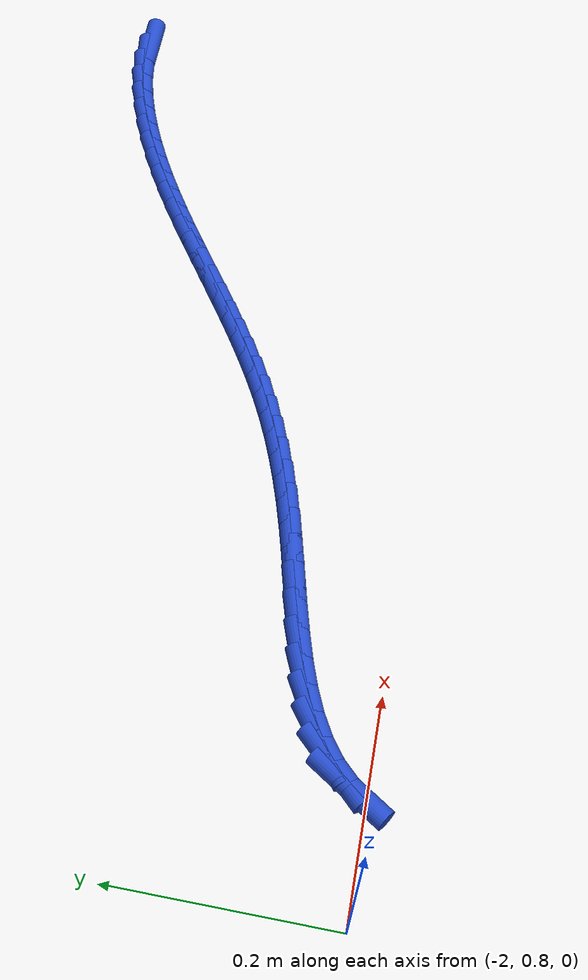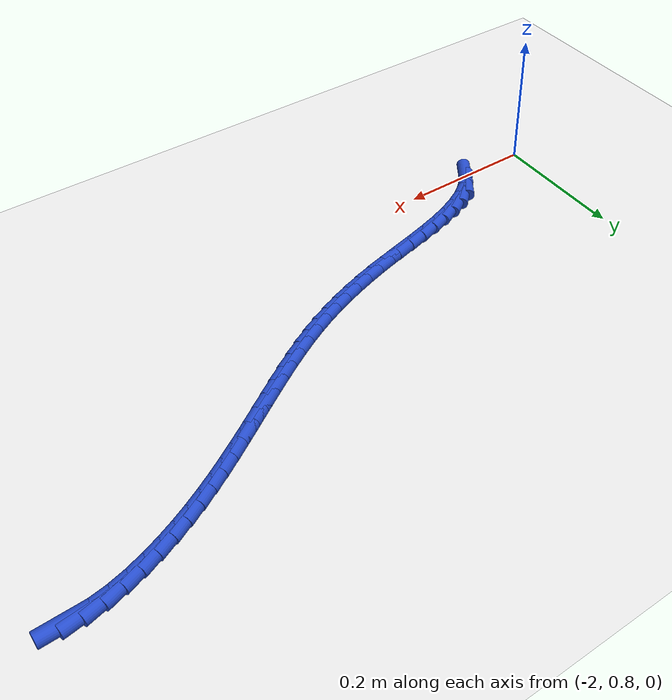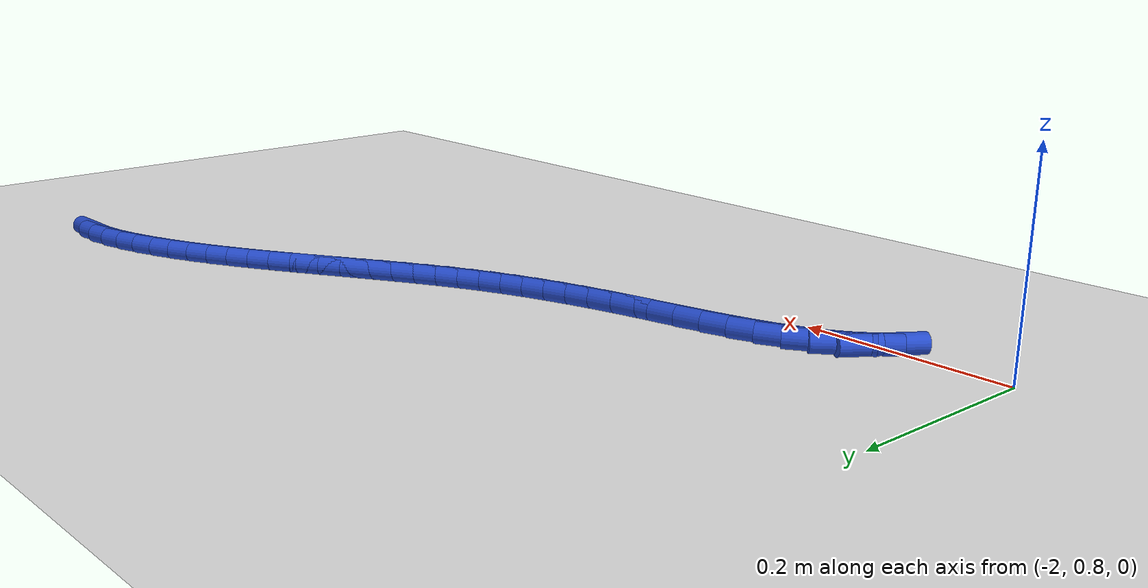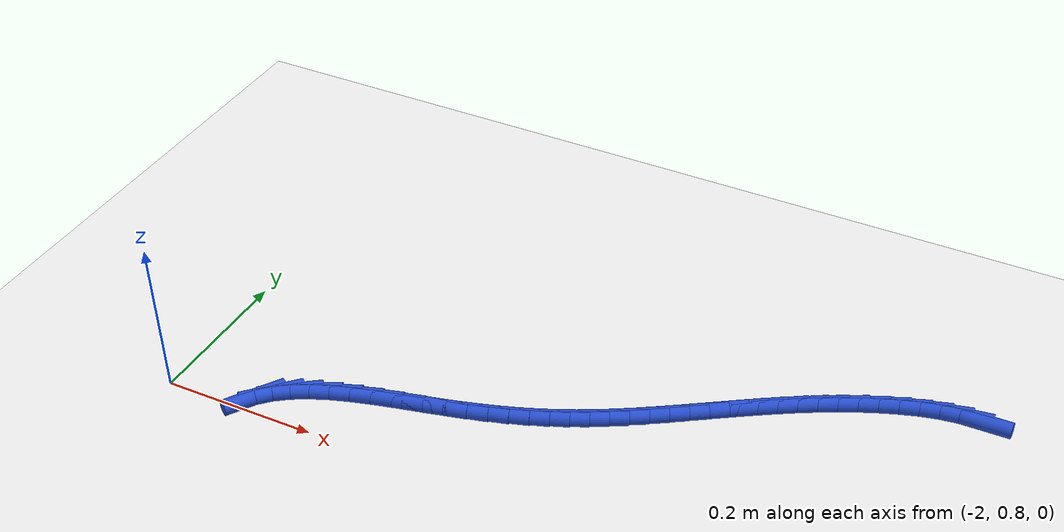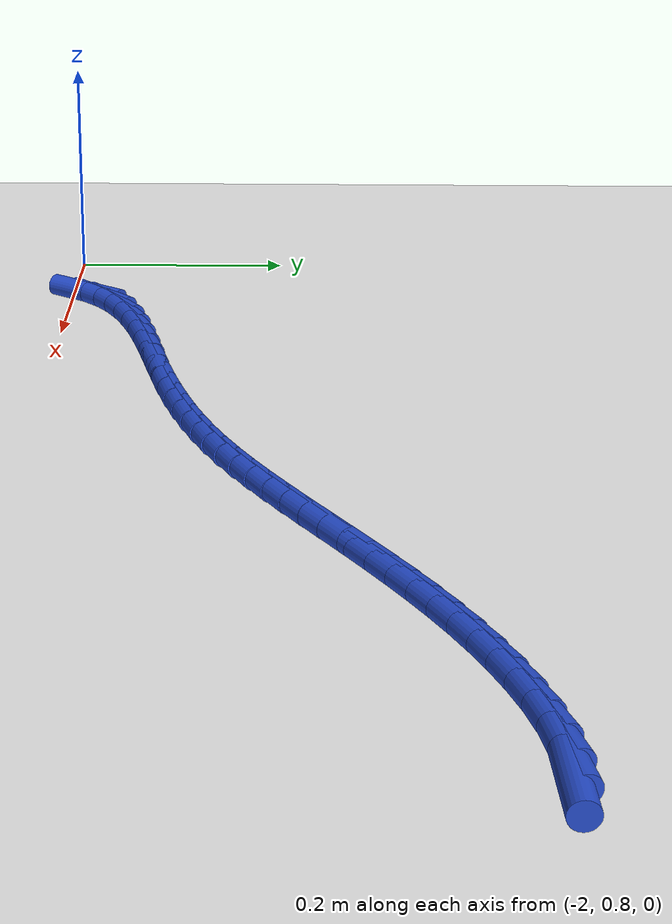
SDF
<sdf version="1.6">
 <world name="default">
  <model name="ground_plane">
   <static>1</static>
   <link name="link">
    <collision name="collision">
     <geometry><plane><normal>0 0 1</normal><size>100 100</size></plane></geometry>
     <surface><friction><ode><mu>100</mu><mu2>50</mu2></ode></friction></surface>
    </collision>
    <visual name="visual">
     <cast_shadows>0</cast_shadows>
     <geometry><plane><normal>0 0 1</normal><size>100 100</size></plane></geometry>
     <material>
      <script><uri>file://media/materials/scripts/gazebo.material</uri><name>Gazebo/WhiteGlow</name></script>
     </material>
    </visual>
   </link>
  </model>
  <model name="line">
   <link name="link_72">
    <pose>-1.095319518348811 1.162499602696919 0.01 0 1.57 0.01829741381164803</pose>
    <collision name="collision">
     <geometry><cylinder><radius>0.01</radius><length>0.08</length></cylinder></geometry>
    </collision>
    <visual name="visual">
     <material>
      <script><name>Gazebo/Blue</name><uri>file://media/materials/scripts/gazebo.material</uri></script>
     </material>
     <geometry><cylinder><radius>0.01</radius><length>0.08</length></cylinder></geometry>
    </visual>
   </link>
   <link name="link_73">
    <pose>-1.1185687767045964 1.1620741539154846 0.01 0 1.57 0.14616884977913375</pose>
    <collision name="collision">
     <geometry><cylinder><radius>0.01</radius><length>0.08</length></cylinder></geometry>
    </collision>
    <visual name="visual">
     <material>
      <script><name>Gazebo/Blue</name><uri>file://media/materials/scripts/gazebo.material</uri></script>
     </material>
     <geometry><cylinder><radius>0.01</radius><length>0.08</length></cylinder></geometry>
    </visual>
   </link>
   <link name="link_74">
    <pose>-1.142263840178189 1.1585857949677996 0.01 0 1.57 0.24255863920379583</pose>
    <collision name="collision">
     <geometry><cylinder><radius>0.01</radius><length>0.08</length></cylinder></geometry>
    </collision>
    <visual name="visual">
     <material>
      <script><name>Gazebo/Blue</name><uri>file://media/materials/scripts/gazebo.material</uri></script>
     </material>
     <geometry><cylinder><radius>0.01</radius><length>0.08</length></cylinder></geometry>
    </visual>
   </link>
   <link name="link_75">
    <pose>-1.1660514224911565 1.1527000269520096 0.01 0 1.57 0.31302887787069433</pose>
    <collision name="collision">
     <geometry><cylinder><radius>0.01</radius><length>0.08</length></cylinder></geometry>
    </collision>
    <visual name="visual">
     <material>
      <script><name>Gazebo/Blue</name><uri>file://media/materials/scripts/gazebo.material</uri></script>
     </material>
     <geometry><cylinder><radius>0.01</radius><length>0.08</length></cylinder></geometry>
    </visual>
   </link>
   <link name="link_76">
    <pose>-1.1895769446468005 1.1450855111065605 0.01 0 1.57 0.3650162050414237</pose>
    <collision name="collision">
     <geometry><cylinder><radius>0.01</radius><length>0.08</length></cylinder></geometry>
    </collision>
    <visual name="visual">
     <material>
      <script><name>Gazebo/Blue</name><uri>file://media/materials/scripts/gazebo.material</uri></script>
     </material>
     <geometry><cylinder><radius>0.01</radius><length>0.08</length></cylinder></geometry>
    </visual>
   </link>
   <link name="link_77">
    <pose>-1.212569343120712 1.1362991814722798 0.01 0 1.57 0.41009348464583384</pose>
    <collision name="collision">
     <geometry><cylinder><radius>0.01</radius><length>0.08</length></cylinder></geometry>
    </collision>
    <visual name="visual">
     <material>
      <script><name>Gazebo/Blue</name><uri>file://media/materials/scripts/gazebo.material</uri></script>
     </material>
     <geometry><cylinder><radius>0.01</radius><length>0.08</length></cylinder></geometry>
    </visual>
   </link>
   <link name="link_78">
    <pose>-1.2350287941676457 1.1265351068677885 0.01 0 1.57 0.45010851367796106</pose>
    <collision name="collision">
     <geometry><cylinder><radius>0.01</radius><length>0.08</length></cylinder></geometry>
    </collision>
    <visual name="visual">
     <material>
      <script><name>Gazebo/Blue</name><uri>file://media/materials/scripts/gazebo.material</uri></script>
     </material>
     <geometry><cylinder><radius>0.01</radius><length>0.08</length></cylinder></geometry>
    </visual>
   </link>
   <link name="link_79">
    <pose>-1.2570104436058611 1.1159138176988062 0.01 0 1.57 0.48488228012746865</pose>
    <collision name="collision">
     <geometry><cylinder><radius>0.01</radius><length>0.08</length></cylinder></geometry>
    </collision>
    <visual name="visual">
     <material>
      <script><name>Gazebo/Blue</name><uri>file://media/materials/scripts/gazebo.material</uri></script>
     </material>
     <geometry><cylinder><radius>0.01</radius><length>0.08</length></cylinder></geometry>
    </visual>
   </link>
   <link name="link_80">
    <pose>-1.2785694372536187 1.1045558443710521 0.01 0 1.57 0.5143201217191318</pose>
    <collision name="collision">
     <geometry><cylinder><radius>0.01</radius><length>0.08</length></cylinder></geometry>
    </collision>
    <visual name="visual">
     <material>
      <script><name>Gazebo/Blue</name><uri>file://media/materials/scripts/gazebo.material</uri></script>
     </material>
     <geometry><cylinder><radius>0.01</radius><length>0.08</length></cylinder></geometry>
    </visual>
   </link>
   <link name="link_81">
    <pose>-1.2997609209291785 1.0925817172902461 0.01 0 1.57 0.5383842664408396</pose>
    <collision name="collision">
     <geometry><cylinder><radius>0.01</radius><length>0.08</length></cylinder></geometry>
    </collision>
    <visual name="visual">
     <material>
      <script><name>Gazebo/Blue</name><uri>file://media/materials/scripts/gazebo.material</uri></script>
     </material>
     <geometry><cylinder><radius>0.01</radius><length>0.08</length></cylinder></geometry>
    </visual>
   </link>
   <link name="link_82">
    <pose>-1.3206400404508016 1.080111966862107 0.01 0 1.57 0.5570689507022372</pose>
    <collision name="collision">
     <geometry><cylinder><radius>0.01</radius><length>0.08</length></cylinder></geometry>
    </collision>
    <visual name="visual">
     <material>
      <script><name>Gazebo/Blue</name><uri>file://media/materials/scripts/gazebo.material</uri></script>
     </material>
     <geometry><cylinder><radius>0.01</radius><length>0.08</length></cylinder></geometry>
    </visual>
   </link>
   <link name="link_83">
    <pose>-1.341261941636747 1.0672671234923543 0.01 0 1.57 0.5703795754331001</pose>
    <collision name="collision">
     <geometry><cylinder><radius>0.01</radius><length>0.08</length></cylinder></geometry>
    </collision>
    <visual name="visual">
     <material>
      <script><name>Gazebo/Blue</name><uri>file://media/materials/scripts/gazebo.material</uri></script>
     </material>
     <geometry><cylinder><radius>0.01</radius><length>0.08</length></cylinder></geometry>
    </visual>
   </link>
   <link name="link_84">
    <pose>-1.3616817703052757 1.0541677175867077 0.01 0 1.57 0.5783164289229342</pose>
    <collision name="collision">
     <geometry><cylinder><radius>0.01</radius><length>0.08</length></cylinder></geometry>
    </collision>
    <visual name="visual">
     <material>
      <script><name>Gazebo/Blue</name><uri>file://media/materials/scripts/gazebo.material</uri></script>
     </material>
     <geometry><cylinder><radius>0.01</radius><length>0.08</length></cylinder></geometry>
    </visual>
   </link>
   <link name="link_85">
    <pose>-1.3819546722746467 1.040934279550886 0.01 0 1.57 0.580862989316116</pose>
    <collision name="collision">
     <geometry><cylinder><radius>0.01</radius><length>0.08</length></cylinder></geometry>
    </collision>
    <visual name="visual">
     <material>
      <script><name>Gazebo/Blue</name><uri>file://media/materials/scripts/gazebo.material</uri></script>
     </material>
     <geometry><cylinder><radius>0.01</radius><length>0.08</length></cylinder></geometry>
    </visual>
   </link>
   <link name="link_86">
    <pose>-1.4021357933631213 1.0276873397906094 0.01 0 1.57 0.5779786522163374</pose>
    <collision name="collision">
     <geometry><cylinder><radius>0.01</radius><length>0.08</length></cylinder></geometry>
    </collision>
    <visual name="visual">
     <material>
      <script><name>Gazebo/Blue</name><uri>file://media/materials/scripts/gazebo.material</uri></script>
     </material>
     <geometry><cylinder><radius>0.01</radius><length>0.08</length></cylinder></geometry>
    </visual>
   </link>
   <link name="link_87">
    <pose>-1.4222802793889595 1.0145474287115963 0.01 0 1.57 0.569595812529635</pose>
    <collision name="collision">
     <geometry><cylinder><radius>0.01</radius><length>0.08</length></cylinder></geometry>
    </collision>
    <visual name="visual">
     <material>
      <script><name>Gazebo/Blue</name><uri>file://media/materials/scripts/gazebo.material</uri></script>
     </material>
     <geometry><cylinder><radius>0.01</radius><length>0.08</length></cylinder></geometry>
    </visual>
   </link>
   <link name="link_88">
    <pose>-1.4424432761704211 1.0016350767195665 0.01 0 1.57 0.5556214715150382</pose>
    <collision name="collision">
     <geometry><cylinder><radius>0.01</radius><length>0.08</length></cylinder></geometry>
    </collision>
    <visual name="visual">
     <material>
      <script><name>Gazebo/Blue</name><uri>file://media/materials/scripts/gazebo.material</uri></script>
     </material>
     <geometry><cylinder><radius>0.01</radius><length>0.08</length></cylinder></geometry>
    </visual>
   </link>
   <link name="link_89">
    <pose>-1.4626799295257666 0.9890708142202393 0.01 0 1.57 0.5359438556144501</pose>
    <collision name="collision">
     <geometry><cylinder><radius>0.01</radius><length>0.08</length></cylinder></geometry>
    </collision>
    <visual name="visual">
     <material>
      <script><name>Gazebo/Blue</name><uri>file://media/materials/scripts/gazebo.material</uri></script>
     </material>
     <geometry><cylinder><radius>0.01</radius><length>0.08</length></cylinder></geometry>
    </visual>
   </link>
   <link name="link_90">
    <pose>-1.4830453852732557 0.976975171619334 0.01 0 1.57 0.5104448321997409</pose>
    <collision name="collision">
     <geometry><cylinder><radius>0.01</radius><length>0.08</length></cylinder></geometry>
    </collision>
    <visual name="visual">
     <material>
      <script><name>Gazebo/Blue</name><uri>file://media/materials/scripts/gazebo.material</uri></script>
     </material>
     <geometry><cylinder><radius>0.01</radius><length>0.08</length></cylinder></geometry>
    </visual>
   </link>
   <link name="link_91">
    <pose>-1.5035947892311492 0.9654686793225704 0.01 0 1.57 0.47901906682745543</pose>
    <collision name="collision">
     <geometry><cylinder><radius>0.01</radius><length>0.08</length></cylinder></geometry>
    </collision>
    <visual name="visual">
     <material>
      <script><name>Gazebo/Blue</name><uri>file://media/materials/scripts/gazebo.material</uri></script>
     </material>
     <geometry><cylinder><radius>0.01</radius><length>0.08</length></cylinder></geometry>
    </visual>
   </link>
   <link name="link_92">
    <pose>-1.5243832872177063 0.9546718677356674 0.01 0 1.57 0.4420470903401344</pose>
    <collision name="collision">
     <geometry><cylinder><radius>0.01</radius><length>0.08</length></cylinder></geometry>
    </collision>
    <visual name="visual">
     <material>
      <script><name>Gazebo/Blue</name><uri>file://media/materials/scripts/gazebo.material</uri></script>
     </material>
     <geometry><cylinder><radius>0.01</radius><length>0.08</length></cylinder></geometry>
    </visual>
   </link>
   <link name="link_93">
    <pose>-1.5454686008360712 0.9446925316688057 0.01 0 1.57 0.4040360991930024</pose>
    <collision name="collision">
     <geometry><cylinder><radius>0.01</radius><length>0.08</length></cylinder></geometry>
    </collision>
    <visual name="visual">
     <material>
      <script><name>Gazebo/Blue</name><uri>file://media/materials/scripts/gazebo.material</uri></script>
     </material>
     <geometry><cylinder><radius>0.01</radius><length>0.08</length></cylinder></geometry>
    </visual>
   </link>
   <link name="link_94">
    <pose>-1.5669334105935138 0.9355150602432081 0.01 0 1.57 0.36803352492911723</pose>
    <collision name="collision">
     <geometry><cylinder><radius>0.01</radius><length>0.08</length></cylinder></geometry>
    </collision>
    <visual name="visual">
     <material>
      <script><name>Gazebo/Blue</name><uri>file://media/materials/scripts/gazebo.material</uri></script>
     </material>
     <geometry><cylinder><radius>0.01</radius><length>0.08</length></cylinder></geometry>
    </visual>
   </link>
   <link name="link_95">
    <pose>-1.5888744106484725 0.9270545541102087 0.01 0 1.57 0.33466702627878503</pose>
    <collision name="collision">
     <geometry><cylinder><radius>0.01</radius><length>0.08</length></cylinder></geometry>
    </collision>
    <visual name="visual">
     <material>
      <script><name>Gazebo/Blue</name><uri>file://media/materials/scripts/gazebo.material</uri></script>
     </material>
     <geometry><cylinder><radius>0.01</radius><length>0.08</length></cylinder></geometry>
    </visual>
   </link>
   <link name="link_96">
    <pose>-1.6113884505645624 0.9192253455427386 0.01 0 1.57 0.3044009998797546</pose>
    <collision name="collision">
     <geometry><cylinder><radius>0.01</radius><length>0.08</length></cylinder></geometry>
    </collision>
    <visual name="visual">
     <material>
      <script><name>Gazebo/Blue</name><uri>file://media/materials/scripts/gazebo.material</uri></script>
     </material>
     <geometry><cylinder><radius>0.01</radius><length>0.08</length></cylinder></geometry>
    </visual>
   </link>
   <link name="link_97">
    <pose>-1.6345723799053984 0.9119417668137291 0.01 0 1.57 0.2775494170005256</pose>
    <collision name="collision">
     <geometry><cylinder><radius>0.01</radius><length>0.08</length></cylinder></geometry>
    </collision>
    <visual name="visual">
     <material>
      <script><name>Gazebo/Blue</name><uri>file://media/materials/scripts/gazebo.material</uri></script>
     </material>
     <geometry><cylinder><radius>0.01</radius><length>0.08</length></cylinder></geometry>
    </visual>
   </link>
   <link name="link_98">
    <pose>-1.6585230482345958 0.9051181501961111 0.01 0 1.57 0.2542950874137748</pose>
    <collision name="collision">
     <geometry><cylinder><radius>0.01</radius><length>0.08</length></cylinder></geometry>
    </collision>
    <visual name="visual">
     <material>
      <script><name>Gazebo/Blue</name><uri>file://media/materials/scripts/gazebo.material</uri></script>
     </material>
     <geometry><cylinder><radius>0.01</radius><length>0.08</length></cylinder></geometry>
    </visual>
   </link>
   <link name="link_99">
    <pose>-1.6833365898691015 0.8986685624083312 0.01 0 1.57 0.2383043105212372</pose>
    <collision name="collision">
     <geometry><cylinder><radius>0.01</radius><length>0.08</length></cylinder></geometry>
    </collision>
    <visual name="visual">
     <material>
      <script><name>Gazebo/Blue</name><uri>file://media/materials/scripts/gazebo.material</uri></script>
     </material>
     <geometry><cylinder><radius>0.01</radius><length>0.08</length></cylinder></geometry>
    </visual>
   </link>
   <link name="link_100">
    <pose>-1.7089476586888266 0.8924471162311285 0.01 0 1.57 0.23700319716056611</pose>
    <collision name="collision">
     <geometry><cylinder><radius>0.01</radius><length>0.08</length></cylinder></geometry>
    </collision>
    <visual name="visual">
     <material>
      <script><name>Gazebo/Blue</name><uri>file://media/materials/scripts/gazebo.material</uri></script>
     </material>
     <geometry><cylinder><radius>0.01</radius><length>0.08</length></cylinder></geometry>
    </visual>
   </link>
   <link name="link_101">
    <pose>-1.734925663602388 0.8861723174660996 0.01 0 1.57 0.25087386354450847</pose>
    <collision name="collision">
     <geometry><cylinder><radius>0.01</radius><length>0.08</length></cylinder></geometry>
    </collision>
    <visual name="visual">
     <material>
      <script><name>Gazebo/Blue</name><uri>file://media/materials/scripts/gazebo.material</uri></script>
     </material>
     <geometry><cylinder><radius>0.01</radius><length>0.08</length></cylinder></geometry>
    </visual>
   </link>
   <link name="link_102">
    <pose>-1.7607898153933437 0.8795440345162916 0.01 0 1.57 0.2805679830966315</pose>
    <collision name="collision">
     <geometry><cylinder><radius>0.01</radius><length>0.08</length></cylinder></geometry>
    </collision>
    <visual name="visual">
     <material>
      <script><name>Gazebo/Blue</name><uri>file://media/materials/scripts/gazebo.material</uri></script>
     </material>
     <geometry><cylinder><radius>0.01</radius><length>0.08</length></cylinder></geometry>
    </visual>
   </link>
   <link name="link_103">
    <pose>-1.7860593248452497 0.8722621357847522 0.01 0 1.57 0.32809634757221073</pose>
    <collision name="collision">
     <geometry><cylinder><radius>0.01</radius><length>0.08</length></cylinder></geometry>
    </collision>
    <visual name="visual">
     <material>
      <script><name>Gazebo/Blue</name><uri>file://media/materials/scripts/gazebo.material</uri></script>
     </material>
     <geometry><cylinder><radius>0.01</radius><length>0.08</length></cylinder></geometry>
    </visual>
   </link>
   <link name="link_104">
    <pose>-1.810253402741664 0.8640264896745291 0.01 0 1.57 0.39693781432057595</pose>
    <collision name="collision">
     <geometry><cylinder><radius>0.01</radius><length>0.08</length></cylinder></geometry>
    </collision>
    <visual name="visual">
     <material>
      <script><name>Gazebo/Blue</name><uri>file://media/materials/scripts/gazebo.material</uri></script>
     </material>
     <geometry><cylinder><radius>0.01</radius><length>0.08</length></cylinder></geometry>
    </visual>
   </link>
   <link name="link_105">
    <pose>-1.8328912598661427 0.8545369645886695 0.01 0 1.57 0.49208701820855283</pose>
    <collision name="collision">
     <geometry><cylinder><radius>0.01</radius><length>0.08</length></cylinder></geometry>
    </collision>
    <visual name="visual">
     <material>
      <script><name>Gazebo/Blue</name><uri>file://media/materials/scripts/gazebo.material</uri></script>
     </material>
     <geometry><cylinder><radius>0.01</radius><length>0.08</length></cylinder></geometry>
    </visual>
   </link>
   <link name="link_106">
    <pose>-1.8534921070022443 0.8434934289302214 0.01 0 1.57 0.6195612825536675</pose>
    <collision name="collision">
     <geometry><cylinder><radius>0.01</radius><length>0.08</length></cylinder></geometry>
    </collision>
    <visual name="visual">
     <material>
      <script><name>Gazebo/Blue</name><uri>file://media/materials/scripts/gazebo.material</uri></script>
     </material>
     <geometry><cylinder><radius>0.01</radius><length>0.08</length></cylinder></geometry>
    </visual>
   </link>
   <link name="link_107">
    <pose>-1.8715751549335249 0.830595751102232 0.01 0 1.57 0.7843194714851074</pose>
    <collision name="collision">
     <geometry><cylinder><radius>0.01</radius><length>0.08</length></cylinder></geometry>
    </collision>
    <visual name="visual">
     <material>
      <script><name>Gazebo/Blue</name><uri>file://media/materials/scripts/gazebo.material</uri></script>
     </material>
     <geometry><cylinder><radius>0.01</radius><length>0.08</length></cylinder></geometry>
    </visual>
   </link>
   <link name="link_108">
    <pose>-1.8866596144435417 0.8155437995077491 0.01 0 1.57 0.9844961072434557</pose>
    <collision name="collision">
     <geometry><cylinder><radius>0.01</radius><length>0.08</length></cylinder></geometry>
    </collision>
    <visual name="visual">
     <material>
      <script><name>Gazebo/Blue</name><uri>file://media/materials/scripts/gazebo.material</uri></script>
     </material>
     <geometry><cylinder><radius>0.01</radius><length>0.08</length></cylinder></geometry>
    </visual>
   </link>
  </model>
 </world>
</sdf>
